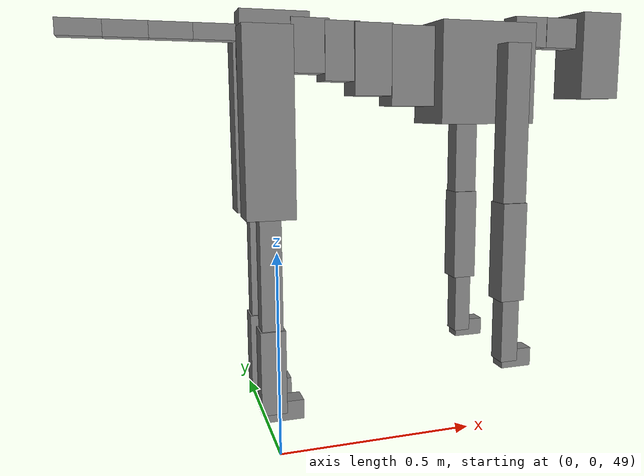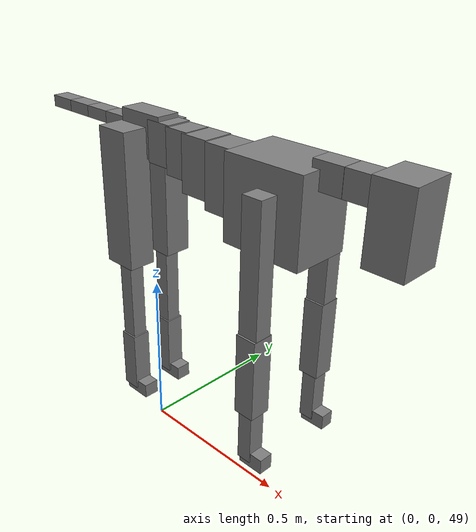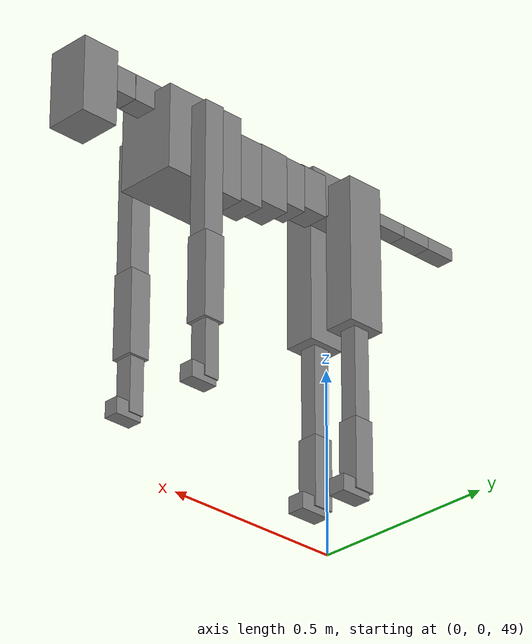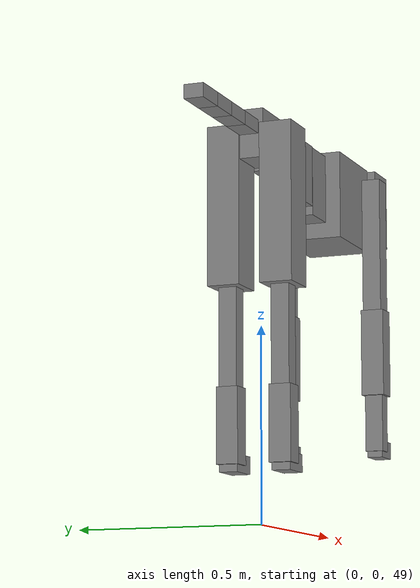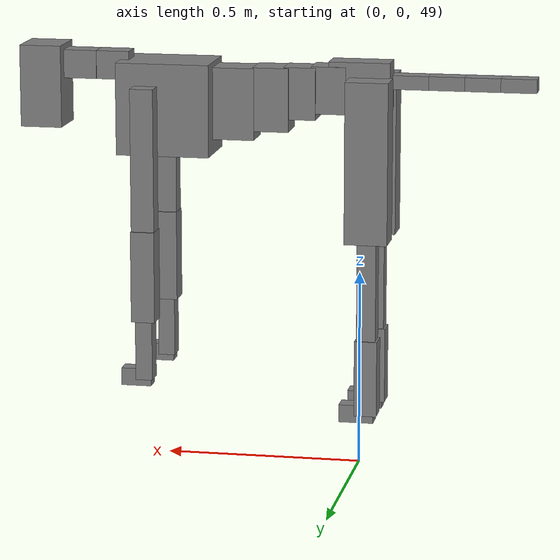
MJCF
<mujoco model="dog">

    <default>
        <joint armature="0.02" stiffness="1" damping="0.2" limited="true"/>
        <geom condim="3" friction="1 0.05 0.05" margin="0.01"/>
        <motor ctrllimited="true" ctrlrange="-1.0 1.0" forcelimited="true" gear="50"/>
    </default>

    <compiler inertiafromgeom="true" angle="radian"/>

    <option timestep="0.016" iterations="50" tolerance="1e-10" solver="Newton" jacobian="dense" cone="pyramidal"/>

    <size nconmax="20000" njmax="60000" nstack="5000000"/>
    <visual>
        <map force="0.1" zfar="30"/>
        <rgba haze="0.15 0.25 0.35 1"/>
        <quality shadowsize="2048"/>
        <global offwidth="800" offheight="800"/>
    </visual>

    <asset>
        <texture type="skybox" builtin="gradient" rgb1="0.3 0.5 0.7" rgb2="0 0 0" width="512" height="512"/>
        <texture name="texplane" type="2d" builtin="checker" rgb1=".2 .3 .4" rgb2=".1 0.15 0.2" width="512" height="512"
                 mark="cross" markrgb=".8 .8 .8"/>
        <texture name="texgeom" type="cube" builtin="flat" mark="cross" width="127" height="1278" rgb1="0.8 0.6 0.4"
                 rgb2="0.8 0.6 0.4" markrgb="1 1 1" random="0.01"/>

        <material name="matplane" reflectance="0.3" texture="texplane" texrepeat="1 1" texuniform="true"/>
        <material name="matgeom" texture="texgeom" texuniform="true" rgba="0.8 0.6 .4 1"/>
    </asset>

    <worldbody>
        <geom name="floor" pos="0 0 0" size="0 0 .25" type="plane" material="matplane" condim="3"/>

        <light directional="false" diffuse=".2 .2 .2" specular="0 0 0" pos="0 0 5" dir="0 0 -1" castshadow="false"/>
        <light mode="targetbodycom" target="torso" directional="false" diffuse=".8 .8 .8" specular="0.3 0.3 0.3"
               pos="0 0 4.0" dir="0 0 -1"/>

        <body name="root" pos="0 0 50">
            <freejoint name="root_1"/>
            <geom type="box" pos="0 0 -0.02" size="0.0774  0.0358  0.063" density="2030"/>

            <body name="spine1" pos="0.054 0 0">
                <joint name="spine1_y" axis="0 1 0" range="0 0.7" limited="true"/>
                <geom type="box" pos="0.02375 0 -0.03" size="0.04375  0.0375  0.05985" density="2030"/>

                <body name="spine2" pos="0.0612 0 0">
                    <joint name="spine2_y" axis="0 1 0" range="-0.15 0.15" limited="true"/>
                    <geom type="box" pos="0.03555  0  -0.04" size="0.04055  0.039  0.06615" density="2030"/>

                    <body name="spine3" pos="0.0730 0 0">
                        <joint name="spine3_y" axis="0 1 0" range="-0.15 0.15" limited="true"/>
                        <geom type="box" pos="0.03555  0  -0.057" size="0.04555  0.0445  0.081" density="2030"/>

                        <body name="spine4" pos="0.0780 0 0">
                            <joint name="spine4_y" axis="0 1 0" range="-0.15 0.15" limited="true"/>
                            <geom type="box" pos="0.05265  0  -0.07" size="0.05265  0.045  0.09135" density="2030"/>

                            <body name="torso" pos="0.1082 0 0">
                                <joint name="torso_y" axis="0 1 0" range="-0.15 0.15" limited="true"/>
                                <geom type="box" pos="0.11925  0  -0.085" size="0.11925  0.085  0.11745"
                                      density="2030"/>

                                <body name="neck1" pos="0.2160  0   0.0180">
                                    <joint name="neck1_y" axis="0 1 0" range="-1.2  -1" limited="true"/>
                                    <geom type="box" pos="0.0423  0  0" size="0.0423  0.03  0.036" density="2325"/>

                                    <body name="neck2" pos="0.0853  0  0">
                                        <joint name="neck2_y" axis="0 1 0" range="0.1  0" limited="true"/>
                                        <geom type="box" pos="0.0423  0  0" size="0.0423  0.03  0.036" density="2325"/>

                                        <body name="head" pos="0.0853  0  0">
                                            <joint name="head_y" axis="0 1 0" range="-0.3  -0.2" limited="true"/>
                                            <geom type="box" pos="0.0531  0  -0.055" size="0.0531  0.06  0.1044"
                                                  density="4030"/>

                                        </body>
                                    </body>
                                </body>

                                <body name="front_shoulder" pos="0.156  0   -0.0480">
                                    <joint name="front_shoulder_y" axis="0 1 0" range="-1 1.5" limited="true"/>
                                    <geom type="box" pos="0 0.13 -0.1680" size="0.0293  0.0250  0.1947" density="1158"/>
                                    <geom type="box" pos="0 -0.13 -0.1680" size="0.0293  0.0250  0.1947"
                                          density="1158"/>

                                    <body name="front_elbow" pos="0  0  -0.3360">
                                        <joint name="front_elbow_y" axis="0 1 0" range="-2 0" limited="true"/>
                                        <geom type="box" pos="0 0.13 -0.1165" size="0.0302  0.0308  0.1165"
                                              density="1081"/>
                                        <geom type="box" pos="0 -0.13 -0.1165" size="0.0302  0.0308  0.1165"
                                              density="1081"/>

                                        <body name="front_wrist" pos="0  0  -0.2331">
                                            <joint name="front_wrist_y" axis="0 1 0" range="-0.2 0" limited="true"/>
                                            <geom type="box" pos="0 0.13 -0.0691" size="0.0215  0.0239  0.0823"
                                                  density="1664"/>
                                            <geom type="box" pos="0 -0.13 -0.0691" size="0.0215  0.0239  0.0823"
                                                  density="1664"/>

                                            <body name="front_finger_end" pos="0  0  -0.1383">
                                                <joint name="front_finger_y" axis="0 1 0" range="-0.4 1"
                                                       limited="true"/>
                                                <geom type="box" pos="0.0208  0.13  -0.0073"
                                                      size="0.0382  0.0208  0.0223" density="1515"/>
                                                <geom type="box" pos="0.0208  -0.13  -0.0073"
                                                      size="0.0382  0.0208  0.0223" density="1515"/>

                                            </body>

                                        </body>
                                    </body>
                                </body>

                            </body>
                        </body>
                    </body>
                </body>
            </body>

            <body name="back_hip" pos="-0.03 0 -0.018">
                <joint name="back_hip_y" axis="0 1 0" range="-1.5 0.3" limited="true"/>
                <geom type="box" pos="0 0.07 -0.1822" size="0.0542  0.0425  0.2050" density="1154"/>
                <geom type="box" pos="0 -0.07 -0.1822" size="0.0542  0.0425  0.2050" density="1154"/>

                <body name="back_knee" pos="0  0  -0.3644">
                    <joint name="back_knee_y" axis="0 1 0" range="0 2.8" limited="true"/>
                    <geom type="box" pos="0 0.07 -0.1430" size="0.0240  0.0236  0.1586" density="1227"/>
                    <geom type="box" pos="0 -0.07 -0.1430" size="0.0240  0.0236  0.1586" density="1227"/>

                    <body name="back_ankle" pos="0  0  -0.2860">
                        <joint name="back_ankle_y" axis="0 1 0" range="-2.2 0" limited="true"/>
                        <geom type="box" pos="0 0.07 -0.0858" size="0.0287  0.0287  0.0971" density="1284"/>
                        <geom type="box" pos="0 -0.07 -0.0858" size="0.0287  0.0287  0.0971" density="1284"/>

                        <body name="back_toe_end" pos="0  0  -0.1717">
                            <joint name="back_toe_y" axis="0 1 0" range="-0.4 1" limited="true"/>
                            <geom type="box" pos="0.0241  0.07  -0.0076" size="0.0441  0.0241  0.0226" density="1515"/>
                            <geom type="box" pos="0.0241  -0.07  -0.0076" size="0.0441  0.0241  0.0226" density="1515"/>

                        </body>
                    </body>
                </body>
            </body>

            <body name="tail1" pos="-0.074 0 -0.006">
                <joint name="tail1_y" axis="0 1 0" range="-0.2 0.2" limited="true"/>
                <geom type="box" pos="-0.0536  0  0" size="0.045  0.025  0.0175" density="1587"/>

                <body name="tail2" pos="-0.09 0 0">
                    <joint name="tail2_y" axis="0 1 0" range="-0.2 0.2" limited="true"/>
                    <geom type="box" pos="-0.0536  0  0" size="0.045  0.025  0.0175" density="1587"/>

                    <body name="tail3" pos="-0.09 0 0">
                        <joint name="tail3_y" axis="0 1 0" range="-0.2 0.2" limited="true"/>
                        <geom type="box" pos="-0.0536  0  0" size="0.045  0.025  0.0175" density="1587"/>

                        <body name="tail4" pos="-0.09 0 0">
                            <joint name="tail4_y" axis="0 1 0" range="-0.2 0.2" limited="true"/>
                            <geom type="box" pos="-0.0536  0  0" size="0.045  0.025  0.0175" density="1587"/>

                        </body>
                    </body>
                </body>
            </body>
        </body>
    </worldbody>

    <actuator>
        <motor joint="spine1_y" forcerange="-150 150     "/>
        <motor joint="spine2_y" forcerange="-150 150     "/>
        <motor joint="spine3_y" forcerange="-150 150     "/>
        <motor joint="spine4_y" forcerange="-150 150     "/>
        <motor joint="torso_y" forcerange="-150 150     "/>
        <motor joint="neck1_y" forcerange="-100 100       "/>
        <motor joint="neck2_y" forcerange="-100 100       "/>
        <motor joint="head_y" forcerange="-150 150       "/>
        <motor joint="front_shoulder_y" forcerange="-138.44 128.32"/>
        <motor joint="front_elbow_y" forcerange="-153.84 170.35"/>
        <motor joint="front_wrist_y" forcerange="-80.94 109.87"/>
        <motor joint="front_finger_y" forcerange="-41.33 29.84"/>
        <motor joint="back_hip_y" forcerange="-389.28 377.31"/>
        <motor joint="back_knee_y" forcerange="-271.18 272.78"/>
        <motor joint="back_angle_y" forcerange="-209.56 149.97"/>
        <motor joint="back_toe_y" forcerange="-40.76 71.83"/>
        <motor joint="tail1_y" forcerange="-50 50     "/>
        <motor joint="tail2_y" forcerange="-50 50     "/>
        <motor joint="tail3_y" forcerange="-50 50     "/>
        <motor joint="tail4_y" forcerange="-50 50     "/>
    </actuator>
</mujoco>
